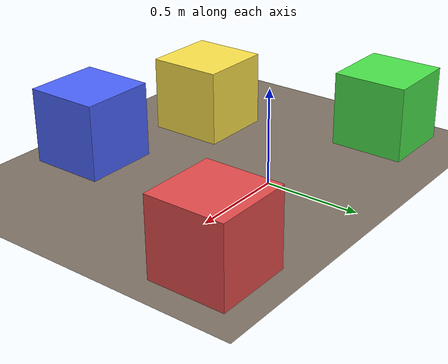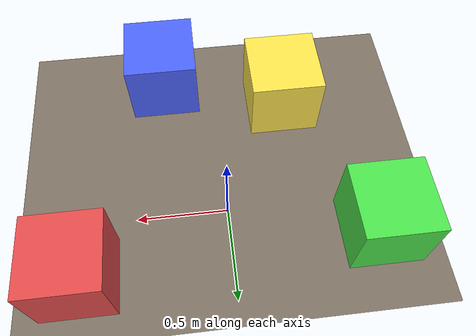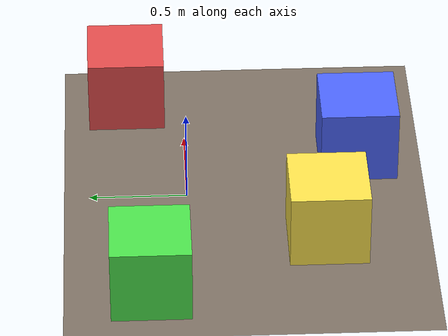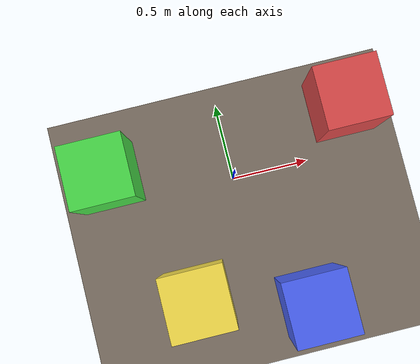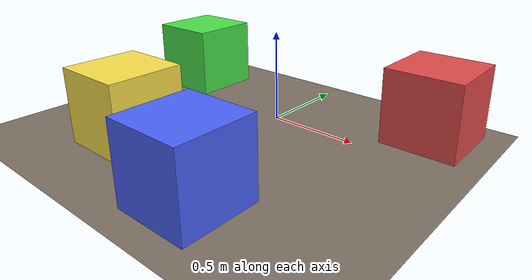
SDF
<sdf version="1.6">
<world name="ocean">

  <include>
    <uri>model://ground_plane</uri>
  </include>

  <model name="seafloor">
    <static>true</static>
    <link name="link">
      <collision name="collision">
        <geometry>
          <plane>
            <size>100 100</size>
          </plane>
        </geometry>
      </collision>

      <visual name="visual">
        <geometry>
          <plane>
            <size>100 100</size>
          </plane>
        </geometry>

        <material>
          <ambient>0.45 0.40 0.35 1</ambient>
          <diffuse>0.5 0.45 0.40 1</diffuse>
        </material>
      </visual>
    </link>
  </model>

  <light type="directional" name="sun">
    <pose>0 0 20 0 0 0</pose>
    <diffuse>0.9 0.9 0.9 1</diffuse>
    <specular>0.4 0.4 0.4 1</specular>
    <direction>-0.4 0.2 -1</direction>
  </light>

  <scene>
    <ambient>0.4 0.45 0.5 1</ambient>
    <background>0.1 0.2 0.35 1</background>

    <fog>
      <type>linear</type>
      <color>0.2 0.35 0.45 1</color>
      <density>0.05</density>
      <start>5</start>
      <end>40</end>
    </fog>
  </scene>

  <physics type="ode">
    <gravity>0 0 -9.8</gravity>
  </physics>

  <model name="box_red">
    <static>true</static>
    <pose>0.8 0.3 0.2 0 0 0</pose>

    <link name="link">

      <collision name="collision">
        <geometry>
          <box>
            <size>0.4 0.4 0.4</size>
          </box>
        </geometry>
      </collision>

      <visual name="visual">
        <geometry>
          <box>
            <size>0.4 0.4 0.4</size>
          </box>
        </geometry>

        <material>
          <ambient>0.8 0.2 0.2 1</ambient>
          <diffuse>0.9 0.3 0.3 1</diffuse>
        </material>

      </visual>

    </link>
  </model>

  <model name="box_green">
    <static>true</static>
    <pose>-0.8 0.2 0.2 0 0 0</pose>

    <link name="link">

      <collision name="collision">
        <geometry>
          <box>
            <size>0.4 0.4 0.4</size>
          </box>
        </geometry>
      </collision>

      <visual name="visual">
        <geometry>
          <box>
            <size>0.4 0.4 0.4</size>
          </box>
        </geometry>

        <material>
          <ambient>0.2 0.8 0.2 1</ambient>
          <diffuse>0.3 0.9 0.3 1</diffuse>
        </material>

      </visual>

    </link>
  </model>

  <model name="box_blue">
    <static>true</static>
    <pose>0.3 -0.9 0.2 0 0 0</pose>

    <link name="link">

      <collision name="collision">
        <geometry>
          <box>
            <size>0.4 0.4 0.4</size>
          </box>
        </geometry>
      </collision>

      <visual name="visual">
        <geometry>
          <box>
            <size>0.4 0.4 0.4</size>
          </box>
        </geometry>

        <material>
          <ambient>0.2 0.3 0.9 1</ambient>
          <diffuse>0.3 0.4 1.0 1</diffuse>
        </material>

      </visual>

    </link>
  </model>

  <model name="box_yellow">
    <static>true</static>
    <pose>-0.4 -0.7 0.2 0 0 0</pose>

    <link name="link">

      <collision name="collision">
        <geometry>
          <box>
            <size>0.4 0.4 0.4</size>
          </box>
        </geometry>
      </collision>

      <visual name="visual">
        <geometry>
          <box>
            <size>0.4 0.4 0.4</size>
          </box>
        </geometry>

        <material>
          <ambient>0.9 0.8 0.2 1</ambient>
          <diffuse>1.0 0.9 0.3 1</diffuse>
        </material>

      </visual>

    </link>
  </model>

</world>
</sdf>
